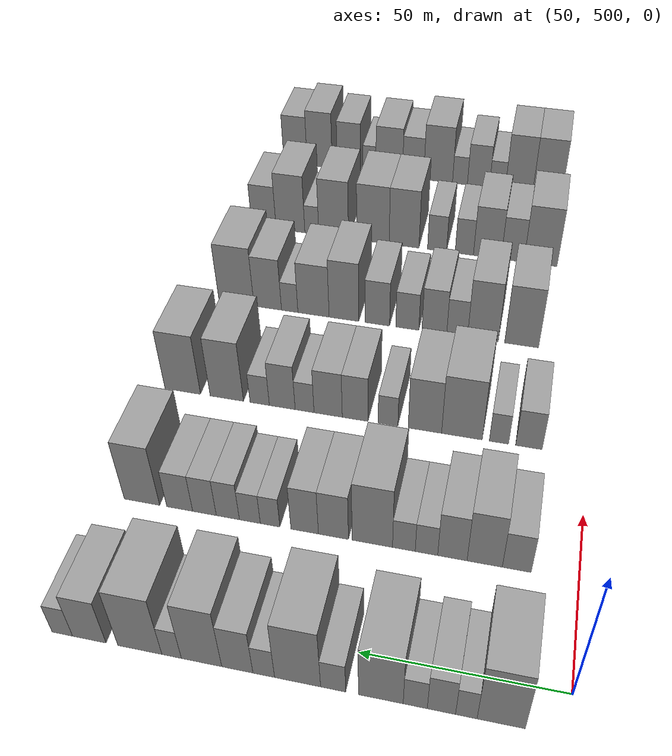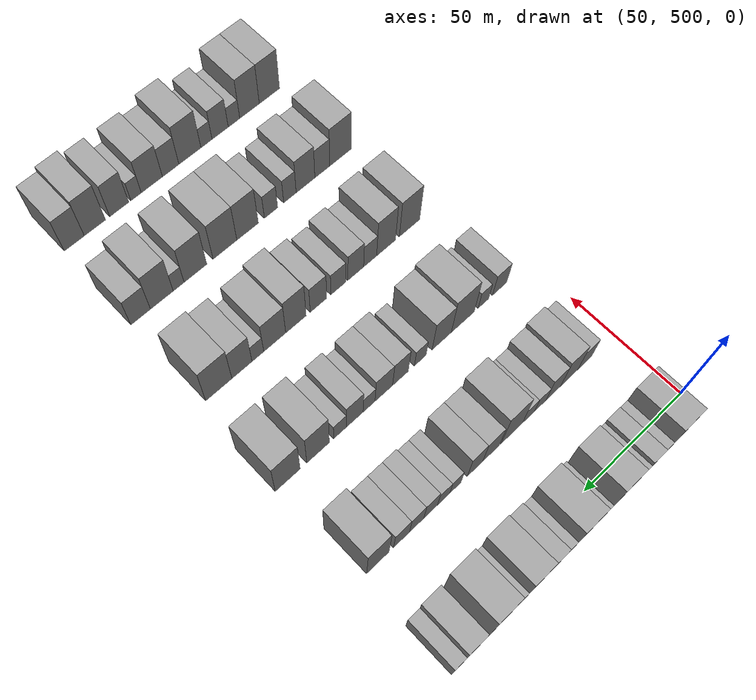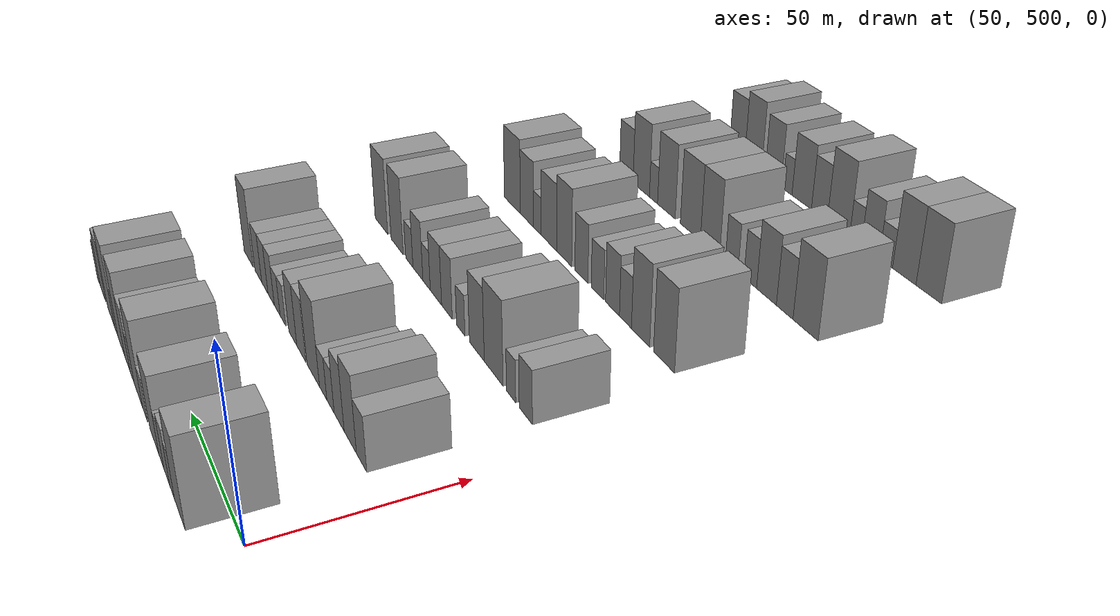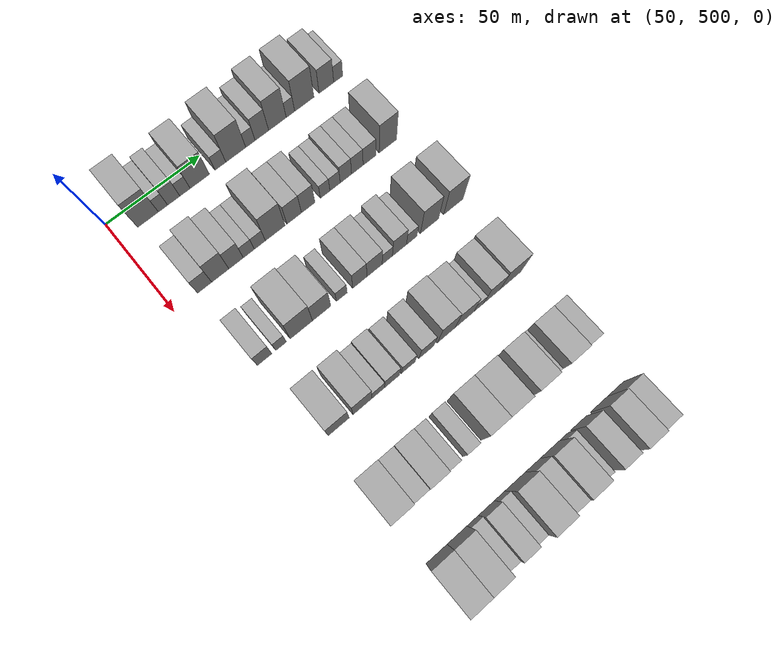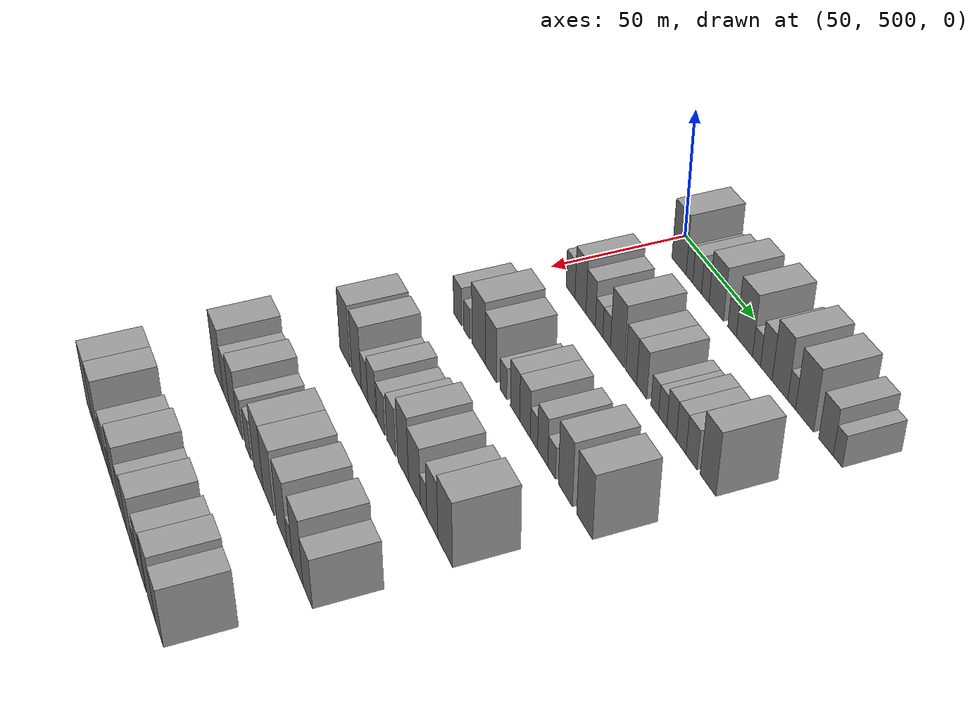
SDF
<sdf version="1.6">
 <world name="default">
  <model name="building_130">
   <static>1</static>
   <pose>50.0000 515.2925 0 0.000000 0.000000 0.000000</pose>
   <link name="link">
    <pose>0 0 12.00 0 0 0</pose>
    <collision name="collision"><geometry><box><size>20.0000 10.8223 24.0000</size></box></geometry></collision>
    <visual name="visual">
     <cast_shadows>0</cast_shadows>
     <geometry><box><size>20.0000 10.8223 24.0000</size></box></geometry>
     <material>
      <script>
       <uri>model://grey_wall/materials/scripts</uri>
       <uri>model://grey_wall/materials/textures</uri>
       <name>vrc/grey_wall</name>
      </script>
     </material>
    </visual>
   </link>
  </model>
  <model name="building_131">
   <static>1</static>
   <pose>50.0000 523.1406 0 0.000000 0.000000 0.000000</pose>
   <link name="link">
    <pose>0 0 6.00 0 0 0</pose>
    <collision name="collision"><geometry><box><size>20.0000 4.8738 12.0000</size></box></geometry></collision>
    <visual name="visual">
     <cast_shadows>0</cast_shadows>
     <geometry><box><size>20.0000 4.8738 12.0000</size></box></geometry>
     <material>
      <script>
       <uri>model://grey_wall/materials/scripts</uri>
       <uri>model://grey_wall/materials/textures</uri>
       <name>vrc/grey_wall</name>
      </script>
     </material>
    </visual>
   </link>
  </model>
  <model name="building_132">
   <static>1</static>
   <pose>50.0000 528.8001 0 0.000000 0.000000 0.000000</pose>
   <link name="link">
    <pose>0 0 7.50 0 0 0</pose>
    <collision name="collision"><geometry><box><size>20.0000 6.4453 15.0000</size></box></geometry></collision>
    <visual name="visual">
     <cast_shadows>0</cast_shadows>
     <geometry><box><size>20.0000 6.4453 15.0000</size></box></geometry>
     <material>
      <script>
       <uri>model://grey_wall/materials/scripts</uri>
       <uri>model://grey_wall/materials/textures</uri>
       <name>vrc/grey_wall</name>
      </script>
     </material>
    </visual>
   </link>
  </model>
  <model name="building_133">
   <static>1</static>
   <pose>50.0000 534.7990 0 0.000000 0.000000 0.000000</pose>
   <link name="link">
    <pose>0 0 6.00 0 0 0</pose>
    <collision name="collision"><geometry><box><size>20.0000 5.5525 12.0000</size></box></geometry></collision>
    <visual name="visual">
     <cast_shadows>0</cast_shadows>
     <geometry><box><size>20.0000 5.5525 12.0000</size></box></geometry>
     <material>
      <script>
       <uri>model://grey_wall/materials/scripts</uri>
       <uri>model://grey_wall/materials/textures</uri>
       <name>vrc/grey_wall</name>
      </script>
     </material>
    </visual>
   </link>
  </model>
  <model name="building_134">
   <static>1</static>
   <pose>50.0000 542.7679 0 0.000000 0.000000 0.000000</pose>
   <link name="link">
    <pose>0 0 10.50 0 0 0</pose>
    <collision name="collision"><geometry><box><size>20.0000 10.3852 21.0000</size></box></geometry></collision>
    <visual name="visual">
     <cast_shadows>0</cast_shadows>
     <geometry><box><size>20.0000 10.3852 21.0000</size></box></geometry>
     <material>
      <script>
       <uri>model://grey_wall/materials/scripts</uri>
       <uri>model://grey_wall/materials/textures</uri>
       <name>vrc/grey_wall</name>
      </script>
     </material>
    </visual>
   </link>
  </model>
  <model name="building_135">
   <static>1</static>
   <pose>50.0000 553.9243 0 0.000000 0.000000 0.000000</pose>
   <link name="link">
    <pose>0 0 6.00 0 0 0</pose>
    <collision name="collision"><geometry><box><size>20.0000 5.9277 12.0000</size></box></geometry></collision>
    <visual name="visual">
     <cast_shadows>0</cast_shadows>
     <geometry><box><size>20.0000 5.9277 12.0000</size></box></geometry>
     <material>
      <script>
       <uri>model://grey_wall/materials/scripts</uri>
       <uri>model://grey_wall/materials/textures</uri>
       <name>vrc/grey_wall</name>
      </script>
     </material>
    </visual>
   </link>
  </model>
  <model name="building_136">
   <static>1</static>
   <pose>50.0000 562.3670 0 0.000000 0.000000 0.000000</pose>
   <link name="link">
    <pose>0 0 12.00 0 0 0</pose>
    <collision name="collision"><geometry><box><size>20.0000 10.9577 24.0000</size></box></geometry></collision>
    <visual name="visual">
     <cast_shadows>0</cast_shadows>
     <geometry><box><size>20.0000 10.9577 24.0000</size></box></geometry>
     <material>
      <script>
       <uri>model://grey_wall/materials/scripts</uri>
       <uri>model://grey_wall/materials/textures</uri>
       <name>vrc/grey_wall</name>
      </script>
     </material>
    </visual>
   </link>
  </model>
  <model name="building_137">
   <static>1</static>
   <pose>50.0000 570.4646 0 0.000000 0.000000 0.000000</pose>
   <link name="link">
    <pose>0 0 6.00 0 0 0</pose>
    <collision name="collision"><geometry><box><size>20.0000 5.2376 12.0000</size></box></geometry></collision>
    <visual name="visual">
     <cast_shadows>0</cast_shadows>
     <geometry><box><size>20.0000 5.2376 12.0000</size></box></geometry>
     <material>
      <script>
       <uri>model://grey_wall/materials/scripts</uri>
       <uri>model://grey_wall/materials/textures</uri>
       <name>vrc/grey_wall</name>
      </script>
     </material>
    </visual>
   </link>
  </model>
  <model name="building_138">
   <static>1</static>
   <pose>50.0000 576.8740 0 0.000000 0.000000 0.000000</pose>
   <link name="link">
    <pose>0 0 9.00 0 0 0</pose>
    <collision name="collision"><geometry><box><size>20.0000 7.5812 18.0000</size></box></geometry></collision>
    <visual name="visual">
     <cast_shadows>0</cast_shadows>
     <geometry><box><size>20.0000 7.5812 18.0000</size></box></geometry>
     <material>
      <script>
       <uri>model://grey_wall/materials/scripts</uri>
       <uri>model://grey_wall/materials/textures</uri>
       <name>vrc/grey_wall</name>
      </script>
     </material>
    </visual>
   </link>
  </model>
  <model name="building_139">
   <static>1</static>
   <pose>50.0000 585.6315 0 0.000000 0.000000 0.000000</pose>
   <link name="link">
    <pose>0 0 12.00 0 0 0</pose>
    <collision name="collision"><geometry><box><size>20.0000 9.9339 24.0000</size></box></geometry></collision>
    <visual name="visual">
     <cast_shadows>0</cast_shadows>
     <geometry><box><size>20.0000 9.9339 24.0000</size></box></geometry>
     <material>
      <script>
       <uri>model://grey_wall/materials/scripts</uri>
       <uri>model://grey_wall/materials/textures</uri>
       <name>vrc/grey_wall</name>
      </script>
     </material>
    </visual>
   </link>
  </model>
  <model name="building_140">
   <static>1</static>
   <pose>50.0000 593.0165 0 0.000000 0.000000 0.000000</pose>
   <link name="link">
    <pose>0 0 6.00 0 0 0</pose>
    <collision name="collision"><geometry><box><size>20.0000 4.8361 12.0000</size></box></geometry></collision>
    <visual name="visual">
     <cast_shadows>0</cast_shadows>
     <geometry><box><size>20.0000 4.8361 12.0000</size></box></geometry>
     <material>
      <script>
       <uri>model://grey_wall/materials/scripts</uri>
       <uri>model://grey_wall/materials/textures</uri>
       <name>vrc/grey_wall</name>
      </script>
     </material>
    </visual>
   </link>
  </model>
  <model name="building_141">
   <static>1</static>
   <pose>50.0000 600.9556 0 0.000000 0.000000 0.000000</pose>
   <link name="link">
    <pose>0 0 12.00 0 0 0</pose>
    <collision name="collision"><geometry><box><size>20.0000 11.0420 24.0000</size></box></geometry></collision>
    <visual name="visual">
     <cast_shadows>0</cast_shadows>
     <geometry><box><size>20.0000 11.0420 24.0000</size></box></geometry>
     <material>
      <script>
       <uri>model://grey_wall/materials/scripts</uri>
       <uri>model://grey_wall/materials/textures</uri>
       <name>vrc/grey_wall</name>
      </script>
     </material>
    </visual>
   </link>
  </model>
  <model name="building_142">
   <static>1</static>
   <pose>50.0000 613.7397 0 0.000000 0.000000 0.000000</pose>
   <link name="link">
    <pose>0 0 9.00 0 0 0</pose>
    <collision name="collision"><geometry><box><size>20.0000 8.5261 18.0000</size></box></geometry></collision>
    <visual name="visual">
     <cast_shadows>0</cast_shadows>
     <geometry><box><size>20.0000 8.5261 18.0000</size></box></geometry>
     <material>
      <script>
       <uri>model://grey_wall/materials/scripts</uri>
       <uri>model://grey_wall/materials/textures</uri>
       <name>vrc/grey_wall</name>
      </script>
     </material>
    </visual>
   </link>
  </model>
  <model name="building_143">
   <static>1</static>
   <pose>50.0000 620.6353 0 0.000000 0.000000 0.000000</pose>
   <link name="link">
    <pose>0 0 6.00 0 0 0</pose>
    <collision name="collision"><geometry><box><size>20.0000 5.2652 12.0000</size></box></geometry></collision>
    <visual name="visual">
     <cast_shadows>0</cast_shadows>
     <geometry><box><size>20.0000 5.2652 12.0000</size></box></geometry>
     <material>
      <script>
       <uri>model://grey_wall/materials/scripts</uri>
       <uri>model://grey_wall/materials/textures</uri>
       <name>vrc/grey_wall</name>
      </script>
     </material>
    </visual>
   </link>
  </model>
  <model name="building_269">
   <static>1</static>
   <pose>90.0000 515.7173 0 0.000000 0.000000 0.000000</pose>
   <link name="link">
    <pose>0 0 7.50 0 0 0</pose>
    <collision name="collision"><geometry><box><size>20.0000 7.2911 15.0000</size></box></geometry></collision>
    <visual name="visual">
     <cast_shadows>0</cast_shadows>
     <geometry><box><size>20.0000 7.2911 15.0000</size></box></geometry>
     <material>
      <script>
       <uri>model://grey_wall/materials/scripts</uri>
       <uri>model://grey_wall/materials/textures</uri>
       <name>vrc/grey_wall</name>
      </script>
     </material>
    </visual>
   </link>
  </model>
  <model name="building_270">
   <static>1</static>
   <pose>90.0000 523.8586 0 0.000000 0.000000 0.000000</pose>
   <link name="link">
    <pose>0 0 10.50 0 0 0</pose>
    <collision name="collision"><geometry><box><size>20.0000 8.9915 21.0000</size></box></geometry></collision>
    <visual name="visual">
     <cast_shadows>0</cast_shadows>
     <geometry><box><size>20.0000 8.9915 21.0000</size></box></geometry>
     <material>
      <script>
       <uri>model://grey_wall/materials/scripts</uri>
       <uri>model://grey_wall/materials/textures</uri>
       <name>vrc/grey_wall</name>
      </script>
     </material>
    </visual>
   </link>
  </model>
  <model name="building_271">
   <static>1</static>
   <pose>90.0000 532.1349 0 0.000000 0.000000 0.000000</pose>
   <link name="link">
    <pose>0 0 9.00 0 0 0</pose>
    <collision name="collision"><geometry><box><size>20.0000 7.5613 18.0000</size></box></geometry></collision>
    <visual name="visual">
     <cast_shadows>0</cast_shadows>
     <geometry><box><size>20.0000 7.5613 18.0000</size></box></geometry>
     <material>
      <script>
       <uri>model://grey_wall/materials/scripts</uri>
       <uri>model://grey_wall/materials/textures</uri>
       <name>vrc/grey_wall</name>
      </script>
     </material>
    </visual>
   </link>
  </model>
  <model name="building_272">
   <static>1</static>
   <pose>90.0000 538.8327 0 0.000000 0.000000 0.000000</pose>
   <link name="link">
    <pose>0 0 6.00 0 0 0</pose>
    <collision name="collision"><geometry><box><size>20.0000 5.8344 12.0000</size></box></geometry></collision>
    <visual name="visual">
     <cast_shadows>0</cast_shadows>
     <geometry><box><size>20.0000 5.8344 12.0000</size></box></geometry>
     <material>
      <script>
       <uri>model://grey_wall/materials/scripts</uri>
       <uri>model://grey_wall/materials/textures</uri>
       <name>vrc/grey_wall</name>
      </script>
     </material>
    </visual>
   </link>
  </model>
  <model name="building_273">
   <static>1</static>
   <pose>90.0000 544.7133 0 0.000000 0.000000 0.000000</pose>
   <link name="link">
    <pose>0 0 6.00 0 0 0</pose>
    <collision name="collision"><geometry><box><size>20.0000 5.9268 12.0000</size></box></geometry></collision>
    <visual name="visual">
     <cast_shadows>0</cast_shadows>
     <geometry><box><size>20.0000 5.9268 12.0000</size></box></geometry>
     <material>
      <script>
       <uri>model://grey_wall/materials/scripts</uri>
       <uri>model://grey_wall/materials/textures</uri>
       <name>vrc/grey_wall</name>
      </script>
     </material>
    </visual>
   </link>
  </model>
  <model name="building_274">
   <static>1</static>
   <pose>90.0000 552.9871 0 0.000000 0.000000 0.000000</pose>
   <link name="link">
    <pose>0 0 12.00 0 0 0</pose>
    <collision name="collision"><geometry><box><size>20.0000 10.6209 24.0000</size></box></geometry></collision>
    <visual name="visual">
     <cast_shadows>0</cast_shadows>
     <geometry><box><size>20.0000 10.6209 24.0000</size></box></geometry>
     <material>
      <script>
       <uri>model://grey_wall/materials/scripts</uri>
       <uri>model://grey_wall/materials/textures</uri>
       <name>vrc/grey_wall</name>
      </script>
     </material>
    </visual>
   </link>
  </model>
  <model name="building_275">
   <static>1</static>
   <pose>90.0000 563.3046 0 0.000000 0.000000 0.000000</pose>
   <link name="link">
    <pose>0 0 9.00 0 0 0</pose>
    <collision name="collision"><geometry><box><size>20.0000 8.0142 18.0000</size></box></geometry></collision>
    <visual name="visual">
     <cast_shadows>0</cast_shadows>
     <geometry><box><size>20.0000 8.0142 18.0000</size></box></geometry>
     <material>
      <script>
       <uri>model://grey_wall/materials/scripts</uri>
       <uri>model://grey_wall/materials/textures</uri>
       <name>vrc/grey_wall</name>
      </script>
     </material>
    </visual>
   </link>
  </model>
  <model name="building_276">
   <static>1</static>
   <pose>90.0000 571.0174 0 0.000000 0.000000 0.000000</pose>
   <link name="link">
    <pose>0 0 9.00 0 0 0</pose>
    <collision name="collision"><geometry><box><size>20.0000 7.4113 18.0000</size></box></geometry></collision>
    <visual name="visual">
     <cast_shadows>0</cast_shadows>
     <geometry><box><size>20.0000 7.4113 18.0000</size></box></geometry>
     <material>
      <script>
       <uri>model://grey_wall/materials/scripts</uri>
       <uri>model://grey_wall/materials/textures</uri>
       <name>vrc/grey_wall</name>
      </script>
     </material>
    </visual>
   </link>
  </model>
  <model name="building_277">
   <static>1</static>
   <pose>90.0000 580.3869 0 0.000000 0.000000 0.000000</pose>
   <link name="link">
    <pose>0 0 6.00 0 0 0</pose>
    <collision name="collision"><geometry><box><size>20.0000 5.3275 12.0000</size></box></geometry></collision>
    <visual name="visual">
     <cast_shadows>0</cast_shadows>
     <geometry><box><size>20.0000 5.3275 12.0000</size></box></geometry>
     <material>
      <script>
       <uri>model://grey_wall/materials/scripts</uri>
       <uri>model://grey_wall/materials/textures</uri>
       <name>vrc/grey_wall</name>
      </script>
     </material>
    </visual>
   </link>
  </model>
  <model name="building_278">
   <static>1</static>
   <pose>90.0000 585.9181 0 0.000000 0.000000 0.000000</pose>
   <link name="link">
    <pose>0 0 6.00 0 0 0</pose>
    <collision name="collision"><geometry><box><size>20.0000 5.7350 12.0000</size></box></geometry></collision>
    <visual name="visual">
     <cast_shadows>0</cast_shadows>
     <geometry><box><size>20.0000 5.7350 12.0000</size></box></geometry>
     <material>
      <script>
       <uri>model://grey_wall/materials/scripts</uri>
       <uri>model://grey_wall/materials/textures</uri>
       <name>vrc/grey_wall</name>
      </script>
     </material>
    </visual>
   </link>
  </model>
  <model name="building_279">
   <static>1</static>
   <pose>90.0000 591.9754 0 0.000000 0.000000 0.000000</pose>
   <link name="link">
    <pose>0 0 7.50 0 0 0</pose>
    <collision name="collision"><geometry><box><size>20.0000 6.3795 15.0000</size></box></geometry></collision>
    <visual name="visual">
     <cast_shadows>0</cast_shadows>
     <geometry><box><size>20.0000 6.3795 15.0000</size></box></geometry>
     <material>
      <script>
       <uri>model://grey_wall/materials/scripts</uri>
       <uri>model://grey_wall/materials/textures</uri>
       <name>vrc/grey_wall</name>
      </script>
     </material>
    </visual>
   </link>
  </model>
  <model name="building_280">
   <static>1</static>
   <pose>90.0000 598.4471 0 0.000000 0.000000 0.000000</pose>
   <link name="link">
    <pose>0 0 7.50 0 0 0</pose>
    <collision name="collision"><geometry><box><size>20.0000 6.5640 15.0000</size></box></geometry></collision>
    <visual name="visual">
     <cast_shadows>0</cast_shadows>
     <geometry><box><size>20.0000 6.5640 15.0000</size></box></geometry>
     <material>
      <script>
       <uri>model://grey_wall/materials/scripts</uri>
       <uri>model://grey_wall/materials/textures</uri>
       <name>vrc/grey_wall</name>
      </script>
     </material>
    </visual>
   </link>
  </model>
  <model name="building_281">
   <static>1</static>
   <pose>90.0000 605.3638 0 0.000000 0.000000 0.000000</pose>
   <link name="link">
    <pose>0 0 7.50 0 0 0</pose>
    <collision name="collision"><geometry><box><size>20.0000 7.2694 15.0000</size></box></geometry></collision>
    <visual name="visual">
     <cast_shadows>0</cast_shadows>
     <geometry><box><size>20.0000 7.2694 15.0000</size></box></geometry>
     <material>
      <script>
       <uri>model://grey_wall/materials/scripts</uri>
       <uri>model://grey_wall/materials/textures</uri>
       <name>vrc/grey_wall</name>
      </script>
     </material>
    </visual>
   </link>
  </model>
  <model name="building_282">
   <static>1</static>
   <pose>90.0000 616.0104 0 0.000000 0.000000 0.000000</pose>
   <link name="link">
    <pose>0 0 12.00 0 0 0</pose>
    <collision name="collision"><geometry><box><size>20.0000 10.0238 24.0000</size></box></geometry></collision>
    <visual name="visual">
     <cast_shadows>0</cast_shadows>
     <geometry><box><size>20.0000 10.0238 24.0000</size></box></geometry>
     <material>
      <script>
       <uri>model://grey_wall/materials/scripts</uri>
       <uri>model://grey_wall/materials/textures</uri>
       <name>vrc/grey_wall</name>
      </script>
     </material>
    </visual>
   </link>
  </model>
  <model name="building_411">
   <static>1</static>
   <pose>130.0000 516.2013 0 0.000000 0.000000 0.000000</pose>
   <link name="link">
    <pose>0 0 7.50 0 0 0</pose>
    <collision name="collision"><geometry><box><size>20.0000 7.4481 15.0000</size></box></geometry></collision>
    <visual name="visual">
     <cast_shadows>0</cast_shadows>
     <geometry><box><size>20.0000 7.4481 15.0000</size></box></geometry>
     <material>
      <script>
       <uri>model://grey_wall/materials/scripts</uri>
       <uri>model://grey_wall/materials/textures</uri>
       <name>vrc/grey_wall</name>
      </script>
     </material>
    </visual>
   </link>
  </model>
  <model name="building_412">
   <static>1</static>
   <pose>130.0000 524.6555 0 0.000000 0.000000 0.000000</pose>
   <link name="link">
    <pose>0 0 6.00 0 0 0</pose>
    <collision name="collision"><geometry><box><size>20.0000 5.4604 12.0000</size></box></geometry></collision>
    <visual name="visual">
     <cast_shadows>0</cast_shadows>
     <geometry><box><size>20.0000 5.4604 12.0000</size></box></geometry>
     <material>
      <script>
       <uri>model://grey_wall/materials/scripts</uri>
       <uri>model://grey_wall/materials/textures</uri>
       <name>vrc/grey_wall</name>
      </script>
     </material>
    </visual>
   </link>
  </model>
  <model name="building_413">
   <static>1</static>
   <pose>130.0000 535.2147 0 0.000000 0.000000 0.000000</pose>
   <link name="link">
    <pose>0 0 12.00 0 0 0</pose>
    <collision name="collision"><geometry><box><size>20.0000 11.6579 24.0000</size></box></geometry></collision>
    <visual name="visual">
     <cast_shadows>0</cast_shadows>
     <geometry><box><size>20.0000 11.6579 24.0000</size></box></geometry>
     <material>
      <script>
       <uri>model://grey_wall/materials/scripts</uri>
       <uri>model://grey_wall/materials/textures</uri>
       <name>vrc/grey_wall</name>
      </script>
     </material>
    </visual>
   </link>
  </model>
  <model name="building_414">
   <static>1</static>
   <pose>130.0000 545.8881 0 0.000000 0.000000 0.000000</pose>
   <link name="link">
    <pose>0 0 10.50 0 0 0</pose>
    <collision name="collision"><geometry><box><size>20.0000 9.6891 21.0000</size></box></geometry></collision>
    <visual name="visual">
     <cast_shadows>0</cast_shadows>
     <geometry><box><size>20.0000 9.6891 21.0000</size></box></geometry>
     <material>
      <script>
       <uri>model://grey_wall/materials/scripts</uri>
       <uri>model://grey_wall/materials/textures</uri>
       <name>vrc/grey_wall</name>
      </script>
     </material>
    </visual>
   </link>
  </model>
  <model name="building_415">
   <static>1</static>
   <pose>130.0000 556.6184 0 0.000000 0.000000 0.000000</pose>
   <link name="link">
    <pose>0 0 6.00 0 0 0</pose>
    <collision name="collision"><geometry><box><size>20.0000 5.7715 12.0000</size></box></geometry></collision>
    <visual name="visual">
     <cast_shadows>0</cast_shadows>
     <geometry><box><size>20.0000 5.7715 12.0000</size></box></geometry>
     <material>
      <script>
       <uri>model://grey_wall/materials/scripts</uri>
       <uri>model://grey_wall/materials/textures</uri>
       <name>vrc/grey_wall</name>
      </script>
     </material>
    </visual>
   </link>
  </model>
  <model name="building_416">
   <static>1</static>
   <pose>130.0000 566.3140 0 0.000000 0.000000 0.000000</pose>
   <link name="link">
    <pose>0 0 9.00 0 0 0</pose>
    <collision name="collision"><geometry><box><size>20.0000 7.6197 18.0000</size></box></geometry></collision>
    <visual name="visual">
     <cast_shadows>0</cast_shadows>
     <geometry><box><size>20.0000 7.6197 18.0000</size></box></geometry>
     <material>
      <script>
       <uri>model://grey_wall/materials/scripts</uri>
       <uri>model://grey_wall/materials/textures</uri>
       <name>vrc/grey_wall</name>
      </script>
     </material>
    </visual>
   </link>
  </model>
  <model name="building_417">
   <static>1</static>
   <pose>130.0000 574.3429 0 0.000000 0.000000 0.000000</pose>
   <link name="link">
    <pose>0 0 9.00 0 0 0</pose>
    <collision name="collision"><geometry><box><size>20.0000 8.4381 18.0000</size></box></geometry></collision>
    <visual name="visual">
     <cast_shadows>0</cast_shadows>
     <geometry><box><size>20.0000 8.4381 18.0000</size></box></geometry>
     <material>
      <script>
       <uri>model://grey_wall/materials/scripts</uri>
       <uri>model://grey_wall/materials/textures</uri>
       <name>vrc/grey_wall</name>
      </script>
     </material>
    </visual>
   </link>
  </model>
  <model name="building_418">
   <static>1</static>
   <pose>130.0000 581.3991 0 0.000000 0.000000 0.000000</pose>
   <link name="link">
    <pose>0 0 6.00 0 0 0</pose>
    <collision name="collision"><geometry><box><size>20.0000 5.6743 12.0000</size></box></geometry></collision>
    <visual name="visual">
     <cast_shadows>0</cast_shadows>
     <geometry><box><size>20.0000 5.6743 12.0000</size></box></geometry>
     <material>
      <script>
       <uri>model://grey_wall/materials/scripts</uri>
       <uri>model://grey_wall/materials/textures</uri>
       <name>vrc/grey_wall</name>
      </script>
     </material>
    </visual>
   </link>
  </model>
  <model name="building_419">
   <static>1</static>
   <pose>130.0000 588.1450 0 0.000000 0.000000 0.000000</pose>
   <link name="link">
    <pose>0 0 9.00 0 0 0</pose>
    <collision name="collision"><geometry><box><size>20.0000 7.8175 18.0000</size></box></geometry></collision>
    <visual name="visual">
     <cast_shadows>0</cast_shadows>
     <geometry><box><size>20.0000 7.8175 18.0000</size></box></geometry>
     <material>
      <script>
       <uri>model://grey_wall/materials/scripts</uri>
       <uri>model://grey_wall/materials/textures</uri>
       <name>vrc/grey_wall</name>
      </script>
     </material>
    </visual>
   </link>
  </model>
  <model name="building_420">
   <static>1</static>
   <pose>130.0000 595.0001 0 0.000000 0.000000 0.000000</pose>
   <link name="link">
    <pose>0 0 6.00 0 0 0</pose>
    <collision name="collision"><geometry><box><size>20.0000 5.8928 12.0000</size></box></geometry></collision>
    <visual name="visual">
     <cast_shadows>0</cast_shadows>
     <geometry><box><size>20.0000 5.8928 12.0000</size></box></geometry>
     <material>
      <script>
       <uri>model://grey_wall/materials/scripts</uri>
       <uri>model://grey_wall/materials/textures</uri>
       <name>vrc/grey_wall</name>
      </script>
     </material>
    </visual>
   </link>
  </model>
  <model name="building_421">
   <static>1</static>
   <pose>130.0000 605.0881 0 0.000000 0.000000 0.000000</pose>
   <link name="link">
    <pose>0 0 12.00 0 0 0</pose>
    <collision name="collision"><geometry><box><size>20.0000 10.2831 24.0000</size></box></geometry></collision>
    <visual name="visual">
     <cast_shadows>0</cast_shadows>
     <geometry><box><size>20.0000 10.2831 24.0000</size></box></geometry>
     <material>
      <script>
       <uri>model://grey_wall/materials/scripts</uri>
       <uri>model://grey_wall/materials/textures</uri>
       <name>vrc/grey_wall</name>
      </script>
     </material>
    </visual>
   </link>
  </model>
  <model name="building_422">
   <static>1</static>
   <pose>130.0000 618.7849 0 0.000000 0.000000 0.000000</pose>
   <link name="link">
    <pose>0 0 12.00 0 0 0</pose>
    <collision name="collision"><geometry><box><size>20.0000 11.1104 24.0000</size></box></geometry></collision>
    <visual name="visual">
     <cast_shadows>0</cast_shadows>
     <geometry><box><size>20.0000 11.1104 24.0000</size></box></geometry>
     <material>
      <script>
       <uri>model://grey_wall/materials/scripts</uri>
       <uri>model://grey_wall/materials/textures</uri>
       <name>vrc/grey_wall</name>
      </script>
     </material>
    </visual>
   </link>
  </model>
  <model name="building_542">
   <static>1</static>
   <pose>170.0000 522.0452 0 0.000000 0.000000 0.000000</pose>
   <link name="link">
    <pose>0 0 12.00 0 0 0</pose>
    <collision name="collision"><geometry><box><size>20.0000 10.5331 24.0000</size></box></geometry></collision>
    <visual name="visual">
     <cast_shadows>0</cast_shadows>
     <geometry><box><size>20.0000 10.5331 24.0000</size></box></geometry>
     <material>
      <script>
       <uri>model://grey_wall/materials/scripts</uri>
       <uri>model://grey_wall/materials/textures</uri>
       <name>vrc/grey_wall</name>
      </script>
     </material>
    </visual>
   </link>
  </model>
  <model name="building_543">
   <static>1</static>
   <pose>170.0000 534.1423 0 0.000000 0.000000 0.000000</pose>
   <link name="link">
    <pose>0 0 12.00 0 0 0</pose>
    <collision name="collision"><geometry><box><size>20.0000 9.6612 24.0000</size></box></geometry></collision>
    <visual name="visual">
     <cast_shadows>0</cast_shadows>
     <geometry><box><size>20.0000 9.6612 24.0000</size></box></geometry>
     <material>
      <script>
       <uri>model://grey_wall/materials/scripts</uri>
       <uri>model://grey_wall/materials/textures</uri>
       <name>vrc/grey_wall</name>
      </script>
     </material>
    </visual>
   </link>
  </model>
  <model name="building_544">
   <static>1</static>
   <pose>170.0000 542.2702 0 0.000000 0.000000 0.000000</pose>
   <link name="link">
    <pose>0 0 7.50 0 0 0</pose>
    <collision name="collision"><geometry><box><size>20.0000 6.5946 15.0000</size></box></geometry></collision>
    <visual name="visual">
     <cast_shadows>0</cast_shadows>
     <geometry><box><size>20.0000 6.5946 15.0000</size></box></geometry>
     <material>
      <script>
       <uri>model://grey_wall/materials/scripts</uri>
       <uri>model://grey_wall/materials/textures</uri>
       <name>vrc/grey_wall</name>
      </script>
     </material>
    </visual>
   </link>
  </model>
  <model name="building_545">
   <static>1</static>
   <pose>170.0000 549.5202 0 0.000000 0.000000 0.000000</pose>
   <link name="link">
    <pose>0 0 9.00 0 0 0</pose>
    <collision name="collision"><geometry><box><size>20.0000 7.9053 18.0000</size></box></geometry></collision>
    <visual name="visual">
     <cast_shadows>0</cast_shadows>
     <geometry><box><size>20.0000 7.9053 18.0000</size></box></geometry>
     <material>
      <script>
       <uri>model://grey_wall/materials/scripts</uri>
       <uri>model://grey_wall/materials/textures</uri>
       <name>vrc/grey_wall</name>
      </script>
     </material>
    </visual>
   </link>
  </model>
  <model name="building_546">
   <static>1</static>
   <pose>170.0000 558.1807 0 0.000000 0.000000 0.000000</pose>
   <link name="link">
    <pose>0 0 7.50 0 0 0</pose>
    <collision name="collision"><geometry><box><size>20.0000 7.4158 15.0000</size></box></geometry></collision>
    <visual name="visual">
     <cast_shadows>0</cast_shadows>
     <geometry><box><size>20.0000 7.4158 15.0000</size></box></geometry>
     <material>
      <script>
       <uri>model://grey_wall/materials/scripts</uri>
       <uri>model://grey_wall/materials/textures</uri>
       <name>vrc/grey_wall</name>
      </script>
     </material>
    </visual>
   </link>
  </model>
  <model name="building_547">
   <static>1</static>
   <pose>170.0000 567.8969 0 0.000000 0.000000 0.000000</pose>
   <link name="link">
    <pose>0 0 9.00 0 0 0</pose>
    <collision name="collision"><geometry><box><size>20.0000 8.0165 18.0000</size></box></geometry></collision>
    <visual name="visual">
     <cast_shadows>0</cast_shadows>
     <geometry><box><size>20.0000 8.0165 18.0000</size></box></geometry>
     <material>
      <script>
       <uri>model://grey_wall/materials/scripts</uri>
       <uri>model://grey_wall/materials/textures</uri>
       <name>vrc/grey_wall</name>
      </script>
     </material>
    </visual>
   </link>
  </model>
  <model name="building_548">
   <static>1</static>
   <pose>170.0000 578.7723 0 0.000000 0.000000 0.000000</pose>
   <link name="link">
    <pose>0 0 12.00 0 0 0</pose>
    <collision name="collision"><geometry><box><size>20.0000 9.7342 24.0000</size></box></geometry></collision>
    <visual name="visual">
     <cast_shadows>0</cast_shadows>
     <geometry><box><size>20.0000 9.7342 24.0000</size></box></geometry>
     <material>
      <script>
       <uri>model://grey_wall/materials/scripts</uri>
       <uri>model://grey_wall/materials/textures</uri>
       <name>vrc/grey_wall</name>
      </script>
     </material>
    </visual>
   </link>
  </model>
  <model name="building_549">
   <static>1</static>
   <pose>170.0000 588.8081 0 0.000000 0.000000 0.000000</pose>
   <link name="link">
    <pose>0 0 10.50 0 0 0</pose>
    <collision name="collision"><geometry><box><size>20.0000 10.3373 21.0000</size></box></geometry></collision>
    <visual name="visual">
     <cast_shadows>0</cast_shadows>
     <geometry><box><size>20.0000 10.3373 21.0000</size></box></geometry>
     <material>
      <script>
       <uri>model://grey_wall/materials/scripts</uri>
       <uri>model://grey_wall/materials/textures</uri>
       <name>vrc/grey_wall</name>
      </script>
     </material>
    </visual>
   </link>
  </model>
  <model name="building_550">
   <static>1</static>
   <pose>170.0000 596.7109 0 0.000000 0.000000 0.000000</pose>
   <link name="link">
    <pose>0 0 6.00 0 0 0</pose>
    <collision name="collision"><geometry><box><size>20.0000 5.4684 12.0000</size></box></geometry></collision>
    <visual name="visual">
     <cast_shadows>0</cast_shadows>
     <geometry><box><size>20.0000 5.4684 12.0000</size></box></geometry>
     <material>
      <script>
       <uri>model://grey_wall/materials/scripts</uri>
       <uri>model://grey_wall/materials/textures</uri>
       <name>vrc/grey_wall</name>
      </script>
     </material>
    </visual>
   </link>
  </model>
  <model name="building_551">
   <static>1</static>
   <pose>170.0000 604.0701 0 0.000000 0.000000 0.000000</pose>
   <link name="link">
    <pose>0 0 10.50 0 0 0</pose>
    <collision name="collision"><geometry><box><size>20.0000 9.2498 21.0000</size></box></geometry></collision>
    <visual name="visual">
     <cast_shadows>0</cast_shadows>
     <geometry><box><size>20.0000 9.2498 21.0000</size></box></geometry>
     <material>
      <script>
       <uri>model://grey_wall/materials/scripts</uri>
       <uri>model://grey_wall/materials/textures</uri>
       <name>vrc/grey_wall</name>
      </script>
     </material>
    </visual>
   </link>
  </model>
  <model name="building_552">
   <static>1</static>
   <pose>170.0000 614.6300 0 0.000000 0.000000 0.000000</pose>
   <link name="link">
    <pose>0 0 12.00 0 0 0</pose>
    <collision name="collision"><geometry><box><size>20.0000 11.8701 24.0000</size></box></geometry></collision>
    <visual name="visual">
     <cast_shadows>0</cast_shadows>
     <geometry><box><size>20.0000 11.8701 24.0000</size></box></geometry>
     <material>
      <script>
       <uri>model://grey_wall/materials/scripts</uri>
       <uri>model://grey_wall/materials/textures</uri>
       <name>vrc/grey_wall</name>
      </script>
     </material>
    </visual>
   </link>
  </model>
  <model name="building_677">
   <static>1</static>
   <pose>210.0000 519.4240 0 0.000000 0.000000 0.000000</pose>
   <link name="link">
    <pose>0 0 12.00 0 0 0</pose>
    <collision name="collision"><geometry><box><size>20.0000 11.2221 24.0000</size></box></geometry></collision>
    <visual name="visual">
     <cast_shadows>0</cast_shadows>
     <geometry><box><size>20.0000 11.2221 24.0000</size></box></geometry>
     <material>
      <script>
       <uri>model://grey_wall/materials/scripts</uri>
       <uri>model://grey_wall/materials/textures</uri>
       <name>vrc/grey_wall</name>
      </script>
     </material>
    </visual>
   </link>
  </model>
  <model name="building_678">
   <static>1</static>
   <pose>210.0000 528.8953 0 0.000000 0.000000 0.000000</pose>
   <link name="link">
    <pose>0 0 9.00 0 0 0</pose>
    <collision name="collision"><geometry><box><size>20.0000 7.7204 18.0000</size></box></geometry></collision>
    <visual name="visual">
     <cast_shadows>0</cast_shadows>
     <geometry><box><size>20.0000 7.7204 18.0000</size></box></geometry>
     <material>
      <script>
       <uri>model://grey_wall/materials/scripts</uri>
       <uri>model://grey_wall/materials/textures</uri>
       <name>vrc/grey_wall</name>
      </script>
     </material>
    </visual>
   </link>
  </model>
  <model name="building_679">
   <static>1</static>
   <pose>210.0000 537.5340 0 0.000000 0.000000 0.000000</pose>
   <link name="link">
    <pose>0 0 10.50 0 0 0</pose>
    <collision name="collision"><geometry><box><size>20.0000 9.5571 21.0000</size></box></geometry></collision>
    <visual name="visual">
     <cast_shadows>0</cast_shadows>
     <geometry><box><size>20.0000 9.5571 21.0000</size></box></geometry>
     <material>
      <script>
       <uri>model://grey_wall/materials/scripts</uri>
       <uri>model://grey_wall/materials/textures</uri>
       <name>vrc/grey_wall</name>
      </script>
     </material>
    </visual>
   </link>
  </model>
  <model name="building_680">
   <static>1</static>
   <pose>210.0000 545.4736 0 0.000000 0.000000 0.000000</pose>
   <link name="link">
    <pose>0 0 7.50 0 0 0</pose>
    <collision name="collision"><geometry><box><size>20.0000 6.3221 15.0000</size></box></geometry></collision>
    <visual name="visual">
     <cast_shadows>0</cast_shadows>
     <geometry><box><size>20.0000 6.3221 15.0000</size></box></geometry>
     <material>
      <script>
       <uri>model://grey_wall/materials/scripts</uri>
       <uri>model://grey_wall/materials/textures</uri>
       <name>vrc/grey_wall</name>
      </script>
     </material>
    </visual>
   </link>
  </model>
  <model name="building_681">
   <static>1</static>
   <pose>210.0000 554.9462 0 0.000000 0.000000 0.000000</pose>
   <link name="link">
    <pose>0 0 7.50 0 0 0</pose>
    <collision name="collision"><geometry><box><size>20.0000 6.6231 15.0000</size></box></geometry></collision>
    <visual name="visual">
     <cast_shadows>0</cast_shadows>
     <geometry><box><size>20.0000 6.6231 15.0000</size></box></geometry>
     <material>
      <script>
       <uri>model://grey_wall/materials/scripts</uri>
       <uri>model://grey_wall/materials/textures</uri>
       <name>vrc/grey_wall</name>
      </script>
     </material>
    </visual>
   </link>
  </model>
  <model name="building_682">
   <static>1</static>
   <pose>210.0000 566.5141 0 0.000000 0.000000 0.000000</pose>
   <link name="link">
    <pose>0 0 12.00 0 0 0</pose>
    <collision name="collision"><geometry><box><size>20.0000 10.5127 24.0000</size></box></geometry></collision>
    <visual name="visual">
     <cast_shadows>0</cast_shadows>
     <geometry><box><size>20.0000 10.5127 24.0000</size></box></geometry>
     <material>
      <script>
       <uri>model://grey_wall/materials/scripts</uri>
       <uri>model://grey_wall/materials/textures</uri>
       <name>vrc/grey_wall</name>
      </script>
     </material>
    </visual>
   </link>
  </model>
  <model name="building_683">
   <static>1</static>
   <pose>210.0000 577.5117 0 0.000000 0.000000 0.000000</pose>
   <link name="link">
    <pose>0 0 12.00 0 0 0</pose>
    <collision name="collision"><geometry><box><size>20.0000 11.4823 24.0000</size></box></geometry></collision>
    <visual name="visual">
     <cast_shadows>0</cast_shadows>
     <geometry><box><size>20.0000 11.4823 24.0000</size></box></geometry>
     <material>
      <script>
       <uri>model://grey_wall/materials/scripts</uri>
       <uri>model://grey_wall/materials/textures</uri>
       <name>vrc/grey_wall</name>
      </script>
     </material>
    </visual>
   </link>
  </model>
  <model name="building_684">
   <static>1</static>
   <pose>210.0000 591.5973 0 0.000000 0.000000 0.000000</pose>
   <link name="link">
    <pose>0 0 12.00 0 0 0</pose>
    <collision name="collision"><geometry><box><size>20.0000 10.6889 24.0000</size></box></geometry></collision>
    <visual name="visual">
     <cast_shadows>0</cast_shadows>
     <geometry><box><size>20.0000 10.6889 24.0000</size></box></geometry>
     <material>
      <script>
       <uri>model://grey_wall/materials/scripts</uri>
       <uri>model://grey_wall/materials/textures</uri>
       <name>vrc/grey_wall</name>
      </script>
     </material>
    </visual>
   </link>
  </model>
  <model name="building_685">
   <static>1</static>
   <pose>210.0000 599.4747 0 0.000000 0.000000 0.000000</pose>
   <link name="link">
    <pose>0 0 6.00 0 0 0</pose>
    <collision name="collision"><geometry><box><size>20.0000 5.0660 12.0000</size></box></geometry></collision>
    <visual name="visual">
     <cast_shadows>0</cast_shadows>
     <geometry><box><size>20.0000 5.0660 12.0000</size></box></geometry>
     <material>
      <script>
       <uri>model://grey_wall/materials/scripts</uri>
       <uri>model://grey_wall/materials/textures</uri>
       <name>vrc/grey_wall</name>
      </script>
     </material>
    </visual>
   </link>
  </model>
  <model name="building_686">
   <static>1</static>
   <pose>210.0000 607.2509 0 0.000000 0.000000 0.000000</pose>
   <link name="link">
    <pose>0 0 12.00 0 0 0</pose>
    <collision name="collision"><geometry><box><size>20.0000 10.4862 24.0000</size></box></geometry></collision>
    <visual name="visual">
     <cast_shadows>0</cast_shadows>
     <geometry><box><size>20.0000 10.4862 24.0000</size></box></geometry>
     <material>
      <script>
       <uri>model://grey_wall/materials/scripts</uri>
       <uri>model://grey_wall/materials/textures</uri>
       <name>vrc/grey_wall</name>
      </script>
     </material>
    </visual>
   </link>
  </model>
  <model name="building_687">
   <static>1</static>
   <pose>210.0000 616.9603 0 0.000000 0.000000 0.000000</pose>
   <link name="link">
    <pose>0 0 9.00 0 0 0</pose>
    <collision name="collision"><geometry><box><size>20.0000 8.9327 18.0000</size></box></geometry></collision>
    <visual name="visual">
     <cast_shadows>0</cast_shadows>
     <geometry><box><size>20.0000 8.9327 18.0000</size></box></geometry>
     <material>
      <script>
       <uri>model://grey_wall/materials/scripts</uri>
       <uri>model://grey_wall/materials/textures</uri>
       <name>vrc/grey_wall</name>
      </script>
     </material>
    </visual>
   </link>
  </model>
  <model name="building_809">
   <static>1</static>
   <pose>250.0000 520.1775 0 0.000000 0.000000 0.000000</pose>
   <link name="link">
    <pose>0 0 12.00 0 0 0</pose>
    <collision name="collision"><geometry><box><size>20.0000 10.6287 24.0000</size></box></geometry></collision>
    <visual name="visual">
     <cast_shadows>0</cast_shadows>
     <geometry><box><size>20.0000 10.6287 24.0000</size></box></geometry>
     <material>
      <script>
       <uri>model://grey_wall/materials/scripts</uri>
       <uri>model://grey_wall/materials/textures</uri>
       <name>vrc/grey_wall</name>
      </script>
     </material>
    </visual>
   </link>
  </model>
  <model name="building_810">
   <static>1</static>
   <pose>250.0000 530.5585 0 0.000000 0.000000 0.000000</pose>
   <link name="link">
    <pose>0 0 12.00 0 0 0</pose>
    <collision name="collision"><geometry><box><size>20.0000 10.1331 24.0000</size></box></geometry></collision>
    <visual name="visual">
     <cast_shadows>0</cast_shadows>
     <geometry><box><size>20.0000 10.1331 24.0000</size></box></geometry>
     <material>
      <script>
       <uri>model://grey_wall/materials/scripts</uri>
       <uri>model://grey_wall/materials/textures</uri>
       <name>vrc/grey_wall</name>
      </script>
     </material>
    </visual>
   </link>
  </model>
  <model name="building_811">
   <static>1</static>
   <pose>250.0000 538.5728 0 0.000000 0.000000 0.000000</pose>
   <link name="link">
    <pose>0 0 6.00 0 0 0</pose>
    <collision name="collision"><geometry><box><size>20.0000 5.8957 12.0000</size></box></geometry></collision>
    <visual name="visual">
     <cast_shadows>0</cast_shadows>
     <geometry><box><size>20.0000 5.8957 12.0000</size></box></geometry>
     <material>
      <script>
       <uri>model://grey_wall/materials/scripts</uri>
       <uri>model://grey_wall/materials/textures</uri>
       <name>vrc/grey_wall</name>
      </script>
     </material>
    </visual>
   </link>
  </model>
  <model name="building_812">
   <static>1</static>
   <pose>250.0000 545.6490 0 0.000000 0.000000 0.000000</pose>
   <link name="link">
    <pose>0 0 9.00 0 0 0</pose>
    <collision name="collision"><geometry><box><size>20.0000 8.2566 18.0000</size></box></geometry></collision>
    <visual name="visual">
     <cast_shadows>0</cast_shadows>
     <geometry><box><size>20.0000 8.2566 18.0000</size></box></geometry>
     <material>
      <script>
       <uri>model://grey_wall/materials/scripts</uri>
       <uri>model://grey_wall/materials/textures</uri>
       <name>vrc/grey_wall</name>
      </script>
     </material>
    </visual>
   </link>
  </model>
  <model name="building_813">
   <static>1</static>
   <pose>250.0000 552.5797 0 0.000000 0.000000 0.000000</pose>
   <link name="link">
    <pose>0 0 6.00 0 0 0</pose>
    <collision name="collision"><geometry><box><size>20.0000 5.6049 12.0000</size></box></geometry></collision>
    <visual name="visual">
     <cast_shadows>0</cast_shadows>
     <geometry><box><size>20.0000 5.6049 12.0000</size></box></geometry>
     <material>
      <script>
       <uri>model://grey_wall/materials/scripts</uri>
       <uri>model://grey_wall/materials/textures</uri>
       <name>vrc/grey_wall</name>
      </script>
     </material>
    </visual>
   </link>
  </model>
  <model name="building_814">
   <static>1</static>
   <pose>250.0000 560.8399 0 0.000000 0.000000 0.000000</pose>
   <link name="link">
    <pose>0 0 12.00 0 0 0</pose>
    <collision name="collision"><geometry><box><size>20.0000 10.9155 24.0000</size></box></geometry></collision>
    <visual name="visual">
     <cast_shadows>0</cast_shadows>
     <geometry><box><size>20.0000 10.9155 24.0000</size></box></geometry>
     <material>
      <script>
       <uri>model://grey_wall/materials/scripts</uri>
       <uri>model://grey_wall/materials/textures</uri>
       <name>vrc/grey_wall</name>
      </script>
     </material>
    </visual>
   </link>
  </model>
  <model name="building_815">
   <static>1</static>
   <pose>250.0000 570.3336 0 0.000000 0.000000 0.000000</pose>
   <link name="link">
    <pose>0 0 9.00 0 0 0</pose>
    <collision name="collision"><geometry><box><size>20.0000 8.0718 18.0000</size></box></geometry></collision>
    <visual name="visual">
     <cast_shadows>0</cast_shadows>
     <geometry><box><size>20.0000 8.0718 18.0000</size></box></geometry>
     <material>
      <script>
       <uri>model://grey_wall/materials/scripts</uri>
       <uri>model://grey_wall/materials/textures</uri>
       <name>vrc/grey_wall</name>
      </script>
     </material>
    </visual>
   </link>
  </model>
  <model name="building_816">
   <static>1</static>
   <pose>250.0000 579.5038 0 0.000000 0.000000 0.000000</pose>
   <link name="link">
    <pose>0 0 10.50 0 0 0</pose>
    <collision name="collision"><geometry><box><size>20.0000 10.2687 21.0000</size></box></geometry></collision>
    <visual name="visual">
     <cast_shadows>0</cast_shadows>
     <geometry><box><size>20.0000 10.2687 21.0000</size></box></geometry>
     <material>
      <script>
       <uri>model://grey_wall/materials/scripts</uri>
       <uri>model://grey_wall/materials/textures</uri>
       <name>vrc/grey_wall</name>
      </script>
     </material>
    </visual>
   </link>
  </model>
  <model name="building_817">
   <static>1</static>
   <pose>250.0000 587.1198 0 0.000000 0.000000 0.000000</pose>
   <link name="link">
    <pose>0 0 6.00 0 0 0</pose>
    <collision name="collision"><geometry><box><size>20.0000 4.9631 12.0000</size></box></geometry></collision>
    <visual name="visual">
     <cast_shadows>0</cast_shadows>
     <geometry><box><size>20.0000 4.9631 12.0000</size></box></geometry>
     <material>
      <script>
       <uri>model://grey_wall/materials/scripts</uri>
       <uri>model://grey_wall/materials/textures</uri>
       <name>vrc/grey_wall</name>
      </script>
     </material>
    </visual>
   </link>
  </model>
  <model name="building_818">
   <static>1</static>
   <pose>250.0000 595.0991 0 0.000000 0.000000 0.000000</pose>
   <link name="link">
    <pose>0 0 10.50 0 0 0</pose>
    <collision name="collision"><geometry><box><size>20.0000 8.9956 21.0000</size></box></geometry></collision>
    <visual name="visual">
     <cast_shadows>0</cast_shadows>
     <geometry><box><size>20.0000 8.9956 21.0000</size></box></geometry>
     <material>
      <script>
       <uri>model://grey_wall/materials/scripts</uri>
       <uri>model://grey_wall/materials/textures</uri>
       <name>vrc/grey_wall</name>
      </script>
     </material>
    </visual>
   </link>
  </model>
  <model name="building_819">
   <static>1</static>
   <pose>250.0000 606.5172 0 0.000000 0.000000 0.000000</pose>
   <link name="link">
    <pose>0 0 12.00 0 0 0</pose>
    <collision name="collision"><geometry><box><size>20.0000 9.8406 24.0000</size></box></geometry></collision>
    <visual name="visual">
     <cast_shadows>0</cast_shadows>
     <geometry><box><size>20.0000 9.8406 24.0000</size></box></geometry>
     <material>
      <script>
       <uri>model://grey_wall/materials/scripts</uri>
       <uri>model://grey_wall/materials/textures</uri>
       <name>vrc/grey_wall</name>
      </script>
     </material>
    </visual>
   </link>
  </model>
  <model name="building_820">
   <static>1</static>
   <pose>250.0000 616.0321 0 0.000000 0.000000 0.000000</pose>
   <link name="link">
    <pose>0 0 10.50 0 0 0</pose>
    <collision name="collision"><geometry><box><size>20.0000 9.1893 21.0000</size></box></geometry></collision>
    <visual name="visual">
     <cast_shadows>0</cast_shadows>
     <geometry><box><size>20.0000 9.1893 21.0000</size></box></geometry>
     <material>
      <script>
       <uri>model://grey_wall/materials/scripts</uri>
       <uri>model://grey_wall/materials/textures</uri>
       <name>vrc/grey_wall</name>
      </script>
     </material>
    </visual>
   </link>
  </model>
 </world>
</sdf>
